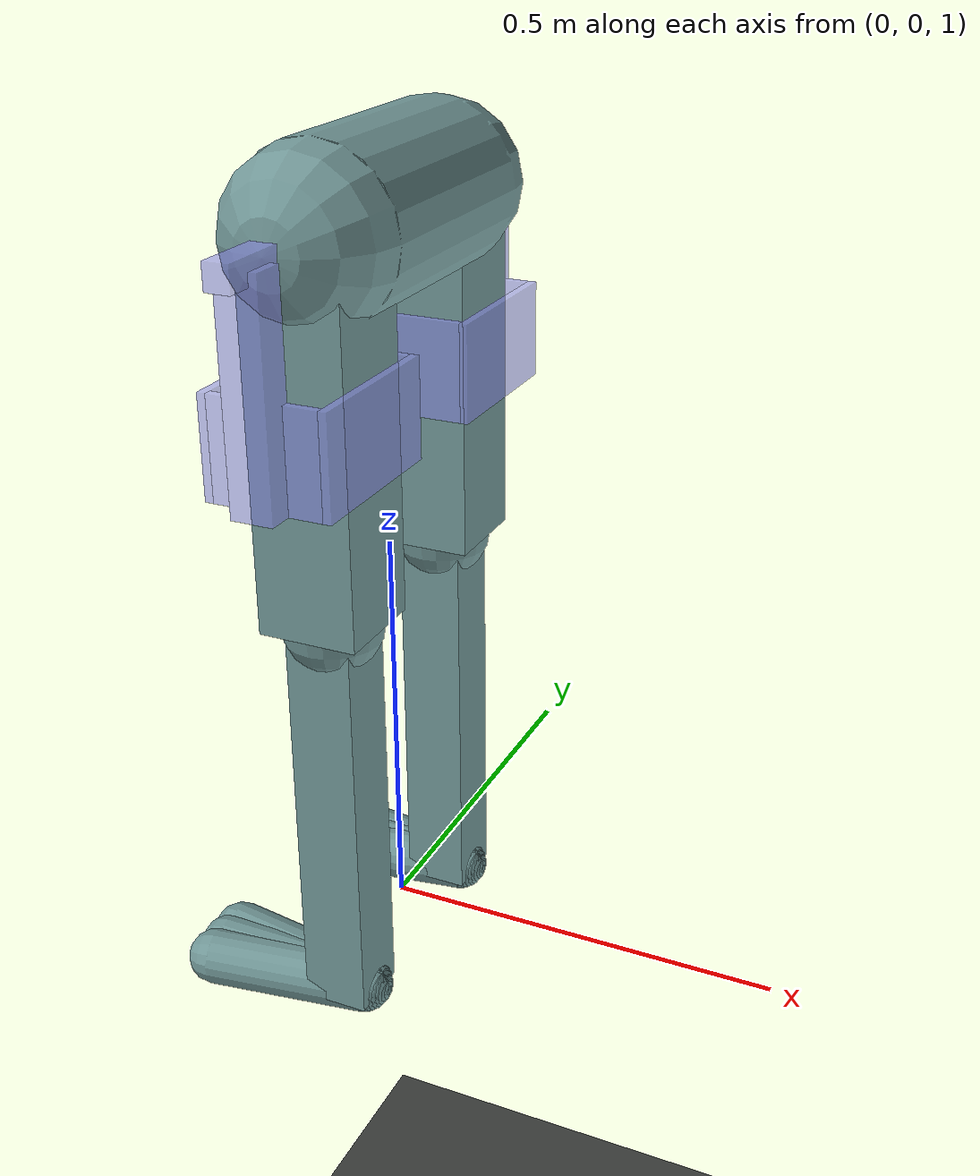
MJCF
<mujoco model="inverted pendulum">
    <compiler angle="radian" />

    <option timestep="0.0166" iterations="1000">
        <flag sensornoise="enable"/>
    </option>

    <default>
        <geom rgba="0.45 0.6 0.6 1" />
        <site type="sphere" size="0.02"/>
    </default>

    <!-- Add the following section for gravity -->
    <option gravity="0 0 -9.81" />

    <worldbody>
        <light directional="true" cutoff="4" exponent="20" diffuse="1 1 1" specular="0 0 0" pos=".9 .3 2.5" dir="-.9 -.3 -2.5" />

        <!-- Ground -->
        <geom name="ground" type="plane" pos="0 0 0" size="5 5 5" rgba=".25 .26 .25 1" />

        <!-- Beam -->
        <body name="beam" pos="0 0 1.0">
            <geom name="butt" type="capsule" fromto=" 0 -.14 0.9 0 .14 0.9"  size="0.1" mass="5"/>

            <!-- Left rod1 -->
            <body name="left" pos="0 -0.14 0.68">
                <geom name="rod1" type="box" pos="0 0 0" size="0.06 0.06 0.22" mass="7.2" />
                <joint name="thigh_L" pos="0 0 0.22" axis="0 1 0"  damping="1" />
                <body name="ball_L" pos="0 0 -0.22">
                    <geom name="ballgeom1" type="sphere" size="0.06"/>

                </body>
                <!--Additional rod1-->
                <body name="additional_rod1" pos="0 0 -0.4765">
                    <geom name="additional_rod1_geom" type="box" pos="0 0 0" size="0.04 0.04 0.2565" mass="4.4" />
                    <joint name="knee_L" pos="0 0 0.2565" axis="0 -1 0" limited="true" damping="1" range="0.0 1.5"/>
                    <!-- Foot -->
                    <body name="left_foot" pos="0.02 0 -0.25">
                        <geom name="left_foot_cap1" type="capsule" fromto="0 0 0 -0.2 -0.03 0"  size="0.035" />
                        <geom name="left_foot_cap2" type="capsule" fromto="0 0 0 -0.2  0.00 0"  size="0.035" />
                        <geom name="left_foot_cap3" type="capsule" fromto="0 0 0 -0.2  0.03 0"  size="0.035" />
                    </body>
                </body>
            </body>

            <body name="assist_motor_left" pos="0 -0.27 0.9">
                <geom name="left" type="box" size="0.015 0.05 0.015" rgba="0.6 0.6 1.0 0.6" mass="1"/>
                <joint name="assist_torque_L" pos="0 -0.03 0" axis="0 1 0" damping="1" />

                <geom name="connect_left" type="box" pos="0 0.0 -0.13" size="0.025 0.02 0.13" rgba="0.6 0.6 1.0 0.6"/>
                <body name="wearable_L" pos="0 0.15 -0.2">
                    <geom name="box1_geom1" type="box" pos="-0.07 -0.04 0" size="0.005 0.1 0.06" rgba="0.6 0.6 1.0 0.6"/>
                    <geom name="box1_geom2" type="box" pos="0.07 -0.04 0" size="0.005 0.1 0.06" rgba="0.6 0.6 1.0 0.6"/>
                    <geom name="box1_geom3" type="box" pos="0 -0.135 0" size="0.065 0.005 0.06" rgba="0.6 0.6 1.0 0.6"/>
                    <geom name="box1_geom4" type="box" pos="0 0.055 0" size="0.065 0.005 0.06" rgba="0.6 0.6 1.0 0.6"/>
                </body>
            </body>

            <!-- Right rod2 -->
            <body name="right" pos="0 0.14 0.68">
                <geom name="rod2" type="box" pos="0 0 0" size="0.06 0.06 0.22" mass="7.2"/>
                <joint name="thigh_R" pos="0 0 0.22" axis="0 1 0"  damping="1" />
                <body name="ball_R" pos="0 0 -0.22">
                    <geom name="ballgeom_R" type="sphere" size="0.06"/>

                </body>

                <!-- Additional rod2 -->
                <body name="additional_rod2" pos="0 0 -0.4765">
                    <geom name="additional_rod2_geom" type="box" pos="0 0 0" size="0.04 0.04 0.2565" mass="4.4" />
                    <joint name="knee_R" pos="0 0 0.2565" axis="0 -1 0" limited="true" damping="1" range="0.0 1.5"/>
                    <!-- Foot -->
                    <body name="right_foot" pos="0.02 0 -0.25">
                        <geom name="right_foot_cap1" type="capsule" fromto="0 0 0 -0.2 -0.03 0"  size="0.035"/>
                        <geom name="right_foot_cap2" type="capsule" fromto="0 0 0 -0.2  0.0 0"  size="0.035"/>
                        <geom name="right_foot_cap3" type="capsule" fromto="0 0 0 -0.2  0.03 0" size="0.035"/>
                    </body>
                </body>
            </body>

            <body name="assist_motor_right" pos="0 0.27 0.9">
                <geom name="right" type="box" size="0.015 0.05 0.015" rgba="0.6 0.6 1.0 0.6" mass="1"/>
                <joint name="assist_torque_R" pos="0 -0.03 0" axis="0 1 0" damping="1"/>

                <geom name="connect_right" type="box" pos="0 0 -0.13" size="0.025 0.02 0.13" rgba="0.6 0.6 1.0 0.6" />
                <body name="wearable_R" pos="0 -0.15 -0.2">
                        <geom name="box2_geom1" type="box" pos="-0.07 0.04 0" size="0.005 0.1 0.06" rgba="0.6 0.6 1.0 0.6"/>
                        <geom name="box2_geom2" type="box" pos="0.07 0.04 0" size="0.005 0.1 0.06" rgba="0.6 0.6 1.0 0.6"/>
                        <geom name="box2_geom3" type="box" pos="0 0.135 0" size="0.065 0.005 0.06" rgba="0.6 0.6 1.0 0.6"/>
                        <geom name="box2_geom4" type="box" pos="0 -0.055 0" size="0.065 0.005 0.06" rgba="0.6 0.6 1.0 0.6"/>
                </body>
            </body>
        </body>
    </worldbody>

	<actuator>
        <motor joint='thigh_L' name='motor1'/>
		<motor joint='thigh_R' name='motor2'/>
        <motor joint='assist_torque_L' name="left_motor"/>
        <motor joint='assist_torque_R' name="right_motor"/>
        <motor joint='knee_L' name = "knee_motorL"/>
        <motor joint='knee_R' name = "knee_motorR"/>
	</actuator>

	<contact>
		<exclude body1="beam" body2="left"/>
		<exclude body1="beam" body2="right"/>
        <exclude body1="left" body2="assist_motor_left"/>
		<exclude body1="right" body2="assist_motor_right"/>
        <exclude body1="left" body2="additional_rod1"/>
		<exclude body1="right" body2="additional_rod2"/>
    </contact>
</mujoco>
